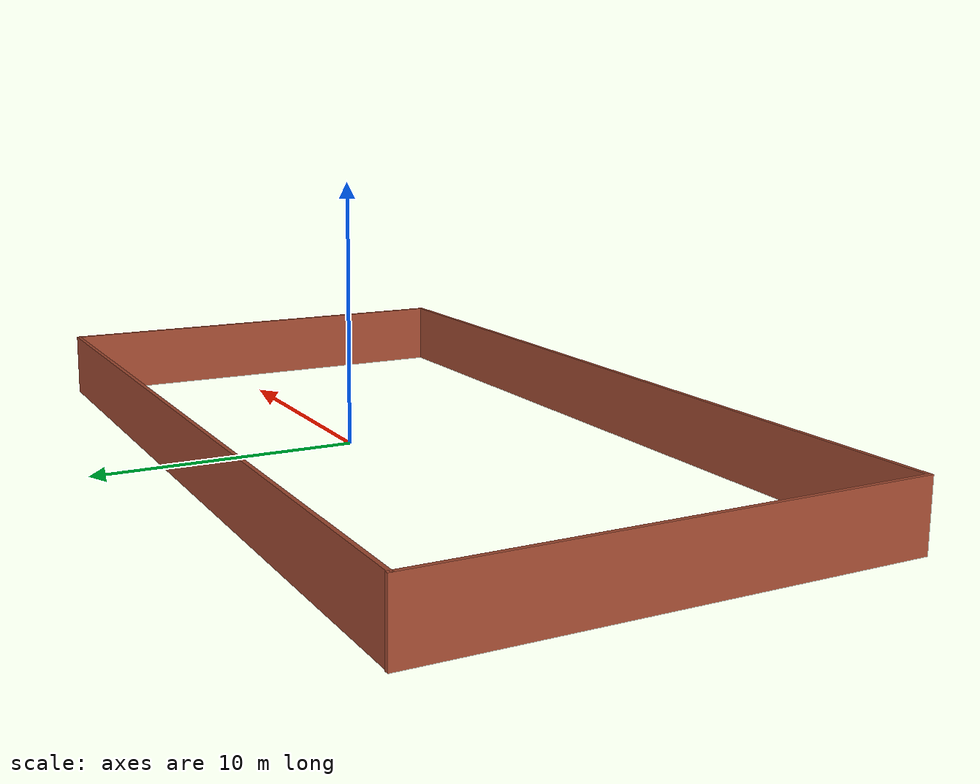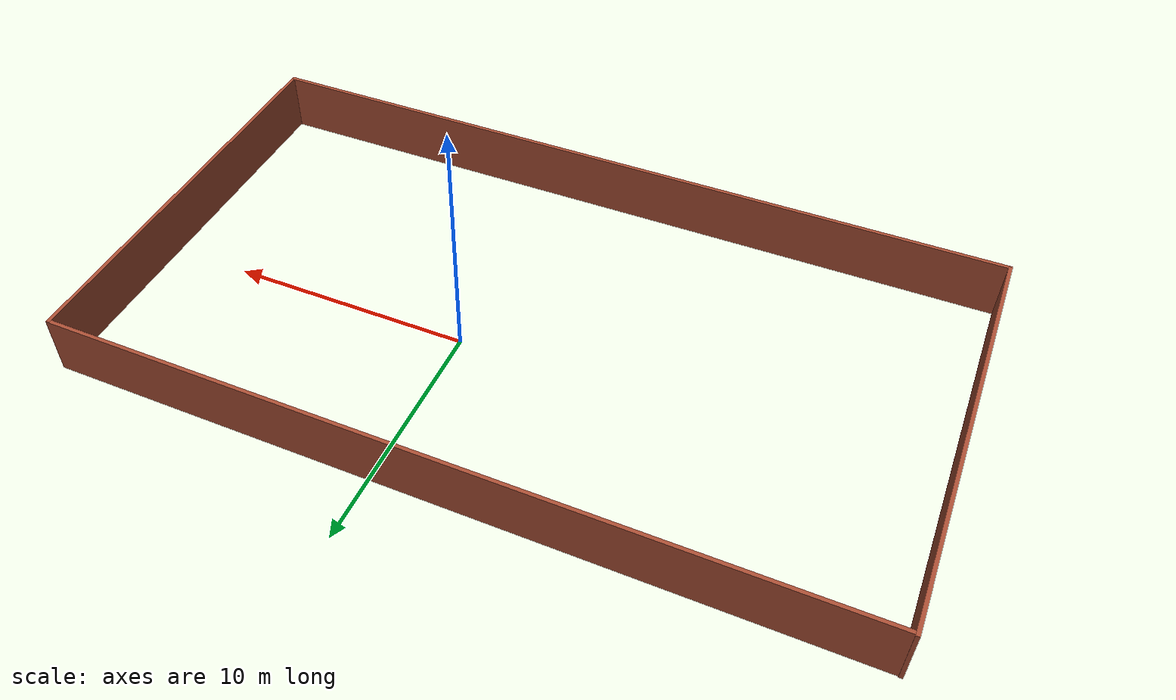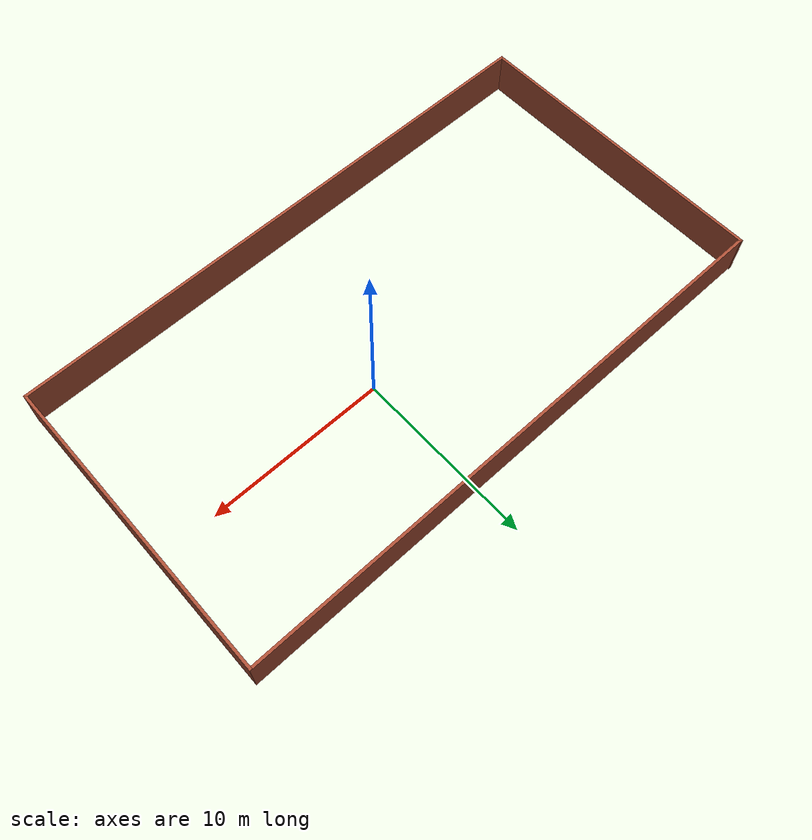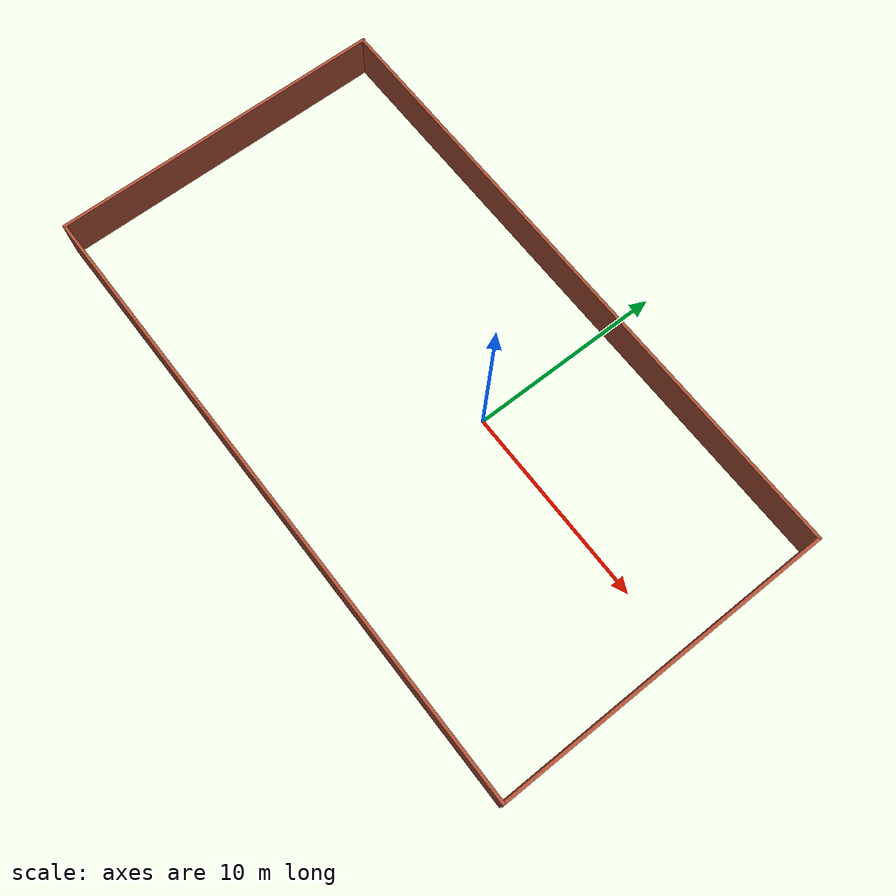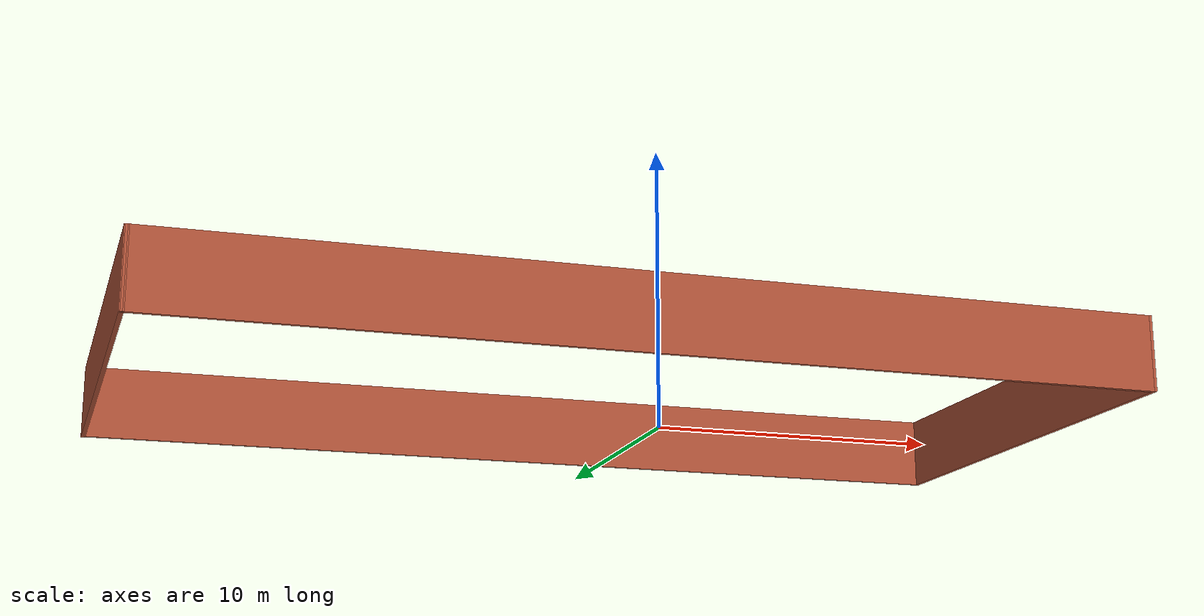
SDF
<?xml version='1.0'?>
<sdf version='1.6'>
  <model name='hus_mur'>
    <pose frame=''>-2.78819 -1.37212 0 0 -0 0</pose>
    <link name='Wall_0'>
      <collision name='Wall_0_Collision'>
        <geometry>
          <box>
            <size>17.5 0.15 2.5</size>
          </box>
        </geometry>
        <pose frame=''>0 0 1.25 0 -0 0</pose>
      </collision>
      <visual name='Wall_0_Visual'>
        <pose frame=''>0 0 1.25 0 -0 0</pose>
        <geometry>
          <box>
            <size>17.5 0.15 2.5</size>
          </box>
        </geometry>
        <material>
          <script>
            <uri>file://media/materials/scripts/gazebo.material</uri>
            <name>Gazebo/Bricks</name>
          </script>
          <ambient>1 1 1 1</ambient>
        </material>
        <meta>
          <layer>0</layer>
        </meta>
      </visual>
      <pose frame=''>-16.06 0.000285 0 0 -0 -1.5708</pose>
    </link>
    <link name='Wall_1'>
      <collision name='Wall_1_Collision'>
        <geometry>
          <box>
            <size>32.2097 0.15 2.5</size>
          </box>
        </geometry>
        <pose frame=''>0 0 1.25 0 -0 0</pose>
      </collision>
      <visual name='Wall_1_Visual'>
        <pose frame=''>0 0 1.25 0 -0 0</pose>
        <geometry>
          <box>
            <size>32.2097 0.15 2.5</size>
          </box>
        </geometry>
        <material>
          <script>
            <uri>file://media/materials/scripts/gazebo.material</uri>
            <name>Gazebo/Bricks</name>
          </script>
          <ambient>1 1 1 1</ambient>
        </material>
        <meta>
          <layer>0</layer>
        </meta>
      </visual>
      <pose frame=''>0 -8.55235 0 0 -0 0.007633</pose>
    </link>
    <link name='Wall_2'>
      <collision name='Wall_2_Collision'>
        <geometry>
          <box>
            <size>17.1888 0.15 2.5</size>
          </box>
        </geometry>
        <pose frame=''>0 0 1.25 0 -0 0</pose>
      </collision>
      <visual name='Wall_2_Visual'>
        <pose frame=''>0 0 1.25 0 -0 0</pose>
        <geometry>
          <box>
            <size>17.1888 0.15 2.5</size>
          </box>
        </geometry>
        <material>
          <script>
            <uri>file://media/materials/scripts/gazebo.material</uri>
            <name>Gazebo/Bricks</name>
          </script>
          <ambient>1 1 1 1</ambient>
        </material>
        <meta>
          <layer>0</layer>
        </meta>
      </visual>
      <pose frame=''>16.06 0.089417 0 0 -0 1.5708</pose>
    </link>
    <link name='Wall_3'>
      <collision name='Wall_3_Collision'>
        <geometry>
          <box>
            <size>32.25 0.15 2.5</size>
          </box>
        </geometry>
        <pose frame=''>0 0 1.25 0 -0 0</pose>
      </collision>
      <visual name='Wall_3_Visual'>
        <pose frame=''>0 0 1.25 0 -0 0</pose>
        <geometry>
          <box>
            <size>32.25 0.15 2.5</size>
          </box>
        </geometry>
        <material>
          <script>
            <uri>file://media/materials/scripts/gazebo.material</uri>
            <name>Gazebo/Bricks</name>
          </script>
          <ambient>1 1 1 1</ambient>
        </material>
        <meta>
          <layer>0</layer>
        </meta>
      </visual>
      <pose frame=''>0.009959 8.63942 0 0 -0 3.14159</pose>
    </link>
    <static>1</static>
  </model>
</sdf>
